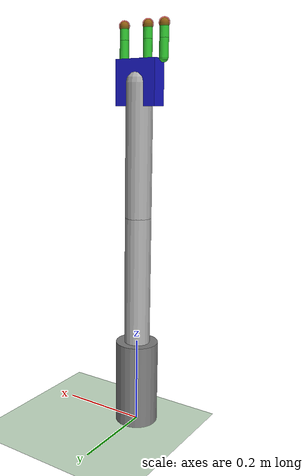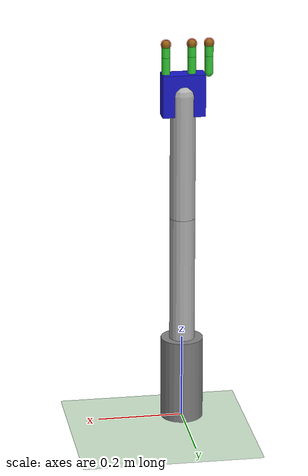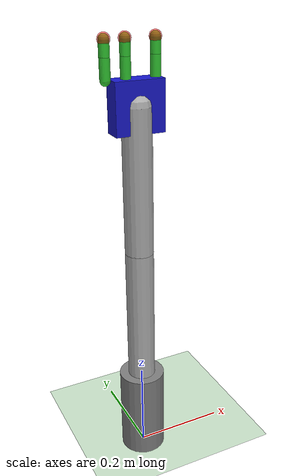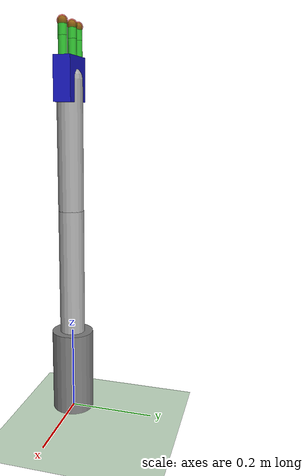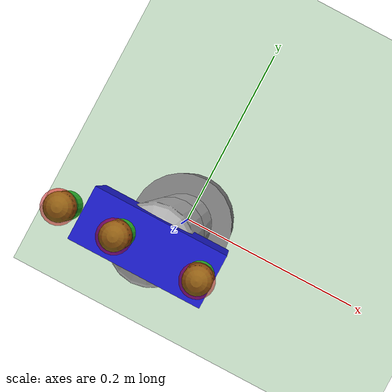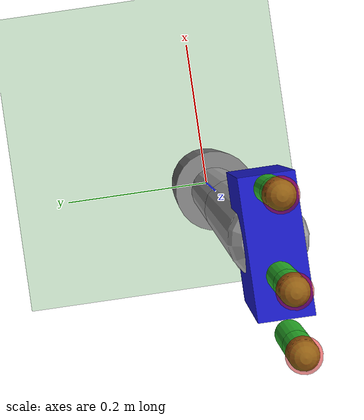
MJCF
<mujoco model="dex_robot_simple">
    <compiler angle="degree" coordinate="local" inertiafromgeom="true"/>
    <option integrator="RK4" timestep="0.002"/>

    <worldbody>
        <light diffuse=".5 .5 .5" pos="0 0 3" dir="0 0 -1"/>
        <geom name="floor" pos="0 0 0" size="0 0 .25" type="plane" rgba="0.8 0.9 0.8 1"/>

        <!-- Camera for Vision Input - Automatically tracks the palm -->
        <camera name="hand_cam" pos="0 -0.6 0.4" mode="targetbody" target="palm"/>

        <body name="base" pos="0 0 0.1">
            <geom name="base_geom" type="cylinder" size="0.05 0.1" rgba="0.5 0.5 0.5 1"/>
            <body name="arm_link1" pos="0 0 0.1">
                <joint name="joint1" type="hinge" axis="0 1 0" range="-90 90"/>
                <geom name="link1_geom" type="capsule" size="0.03" fromto="0 0 0 0 0 0.3" rgba="0.7 0.7 0.7 1"/>
                <body name="arm_link2" pos="0 0 0.3">
                    <joint name="joint2" type="hinge" axis="0 1 0" range="-90 90"/>
                    <geom name="link2_geom" type="capsule" size="0.03" fromto="0 0 0 0 0 0.3" rgba="0.7 0.7 0.7 1"/>

                    <!-- Dexterous Hand Base (Palm) -->
                    <body name="palm" pos="0 0 0.3">
                        <geom name="palm_geom" type="box" size="0.05 0.02 0.05" rgba="0.1 0.1 0.8 1"/>

                        <!-- Finger 1 (Thumb-like) -->
                        <body name="finger1" pos="0.04 0 0.05">
                            <joint name="f1_j1" type="hinge" axis="1 0 0" range="0 90"/>
                            <geom name="f1_g1" type="capsule" size="0.01" fromto="0 0 0 0 0 0.04" rgba="0.2 0.8 0.2 1"/>
                            <body name="f1_tip" pos="0 0 0.04">
                                <joint name="f1_j2" type="hinge" axis="1 0 0" range="0 90"/>
                                <geom name="f1_g2" type="capsule" size="0.01" fromto="0 0 0 0 0 0.03" rgba="0.2 0.8 0.2 1"/>
                                <site name="f1_touch" pos="0 0 0.03" size="0.012" type="sphere" rgba="1 0 0 0.5"/>
                            </body>
                        </body>

                        <!-- Finger 2 -->
                        <body name="finger2" pos="-0.02 0 0.05">
                            <joint name="f2_j1" type="hinge" axis="1 0 0" range="0 90"/>
                            <geom name="f2_g1" type="capsule" size="0.01" fromto="0 0 0 0 0 0.04" rgba="0.2 0.8 0.2 1"/>
                            <body name="f2_tip" pos="0 0 0.04">
                                <joint name="f2_j2" type="hinge" axis="1 0 0" range="0 90"/>
                                <geom name="f2_g2" type="capsule" size="0.01" fromto="0 0 0 0 0 0.03" rgba="0.2 0.8 0.2 1"/>
                                <site name="f2_touch" pos="0 0 0.03" size="0.012" type="sphere" rgba="1 0 0 0.5"/>
                            </body>
                        </body>

                        <!-- Finger 3 -->
                        <body name="finger3" pos="-0.06 0 0.05">
                            <joint name="f3_j1" type="hinge" axis="1 0 0" range="0 90"/>
                            <geom name="f3_g1" type="capsule" size="0.01" fromto="0 0 0 0 0 0.04" rgba="0.2 0.8 0.2 1"/>
                            <body name="f3_tip" pos="0 0 0.04">
                                <joint name="f3_j2" type="hinge" axis="1 0 0" range="0 90"/>
                                <geom name="f3_g2" type="capsule" size="0.01" fromto="0 0 0 0 0 0.03" rgba="0.2 0.8 0.2 1"/>
                                <site name="f3_touch" pos="0 0 0.03" size="0.012" type="sphere" rgba="1 0 0 0.5"/>
                            </body>
                        </body>
                    </body>
                </body>
            </body>
        </body>
    </worldbody>

    <sensor>
        <touch name="f1_touch_sensor" site="f1_touch"/>
        <touch name="f2_touch_sensor" site="f2_touch"/>
        <touch name="f3_touch_sensor" site="f3_touch"/>
    </sensor>

    <actuator>
        <motor name="motor1" joint="joint1" gear="50"/>
        <motor name="motor2" joint="joint2" gear="50"/>
        <motor name="f1_m1" joint="f1_j1" gear="5"/>
        <motor name="f1_m2" joint="f1_j2" gear="5"/>
        <motor name="f2_m1" joint="f2_j1" gear="5"/>
        <motor name="f2_m2" joint="f2_j2" gear="5"/>
        <motor name="f3_m1" joint="f3_j1" gear="5"/>
        <motor name="f3_m2" joint="f3_j2" gear="5"/>
    </actuator>
</mujoco>
